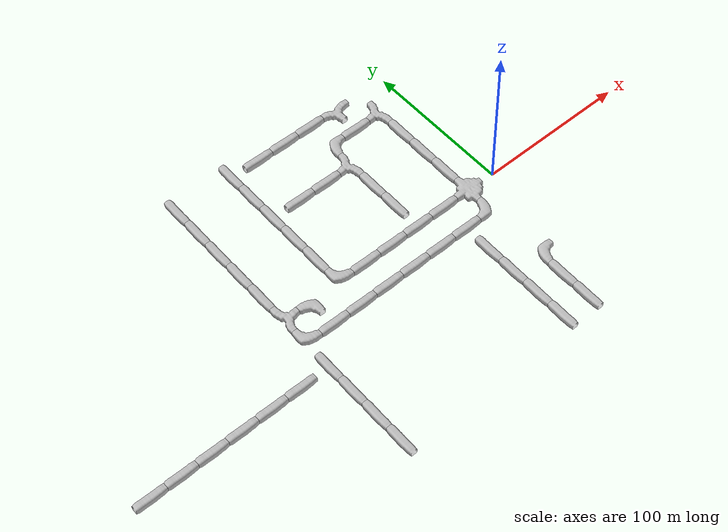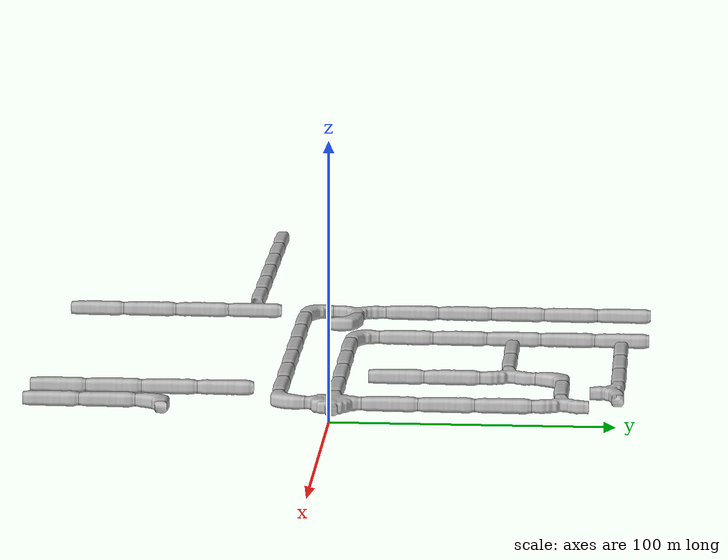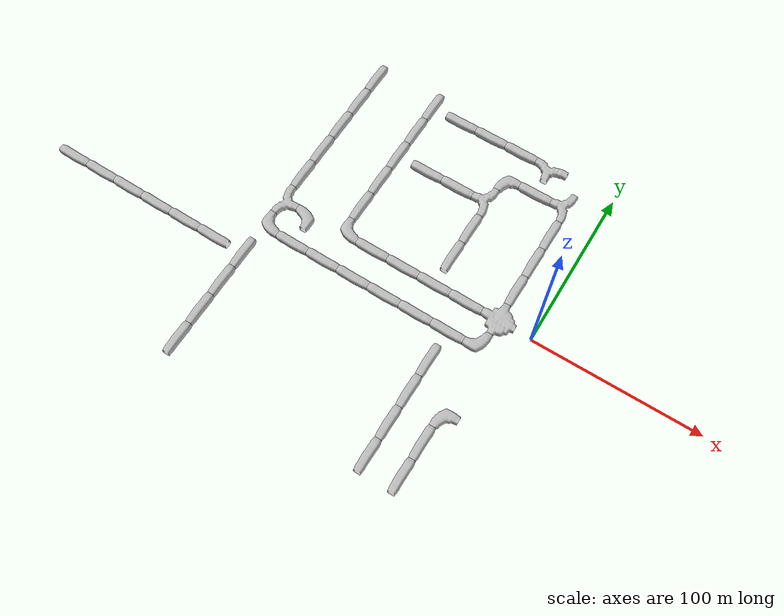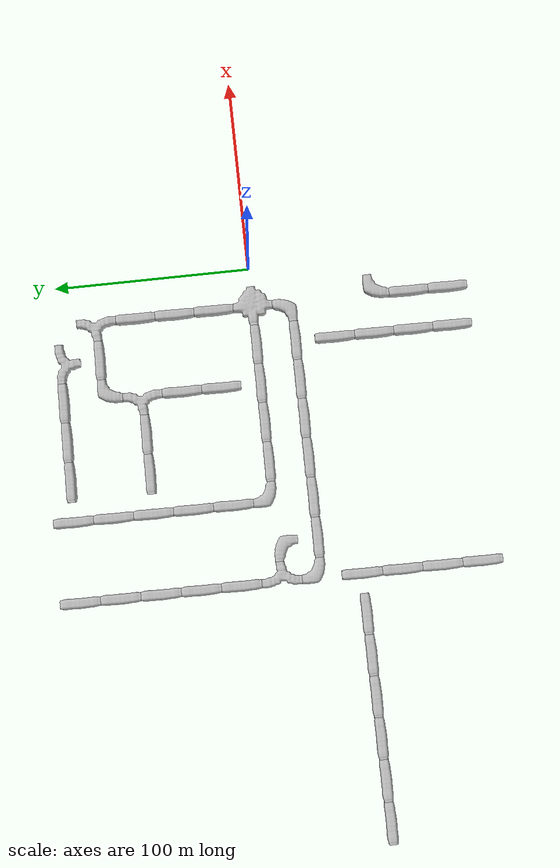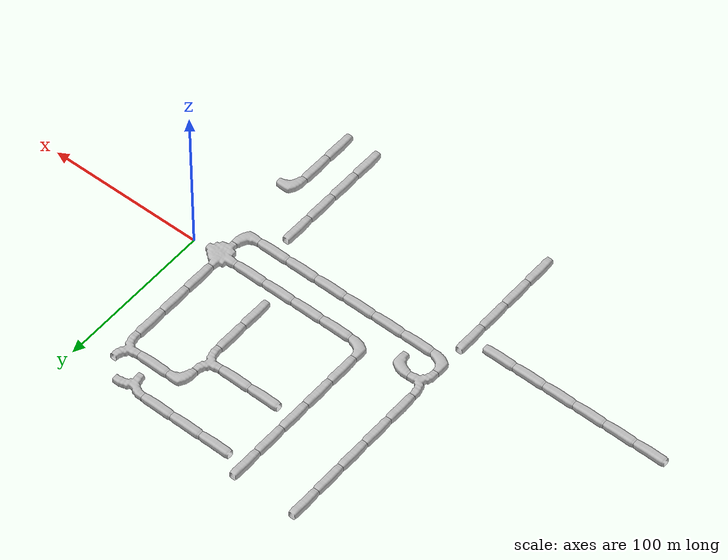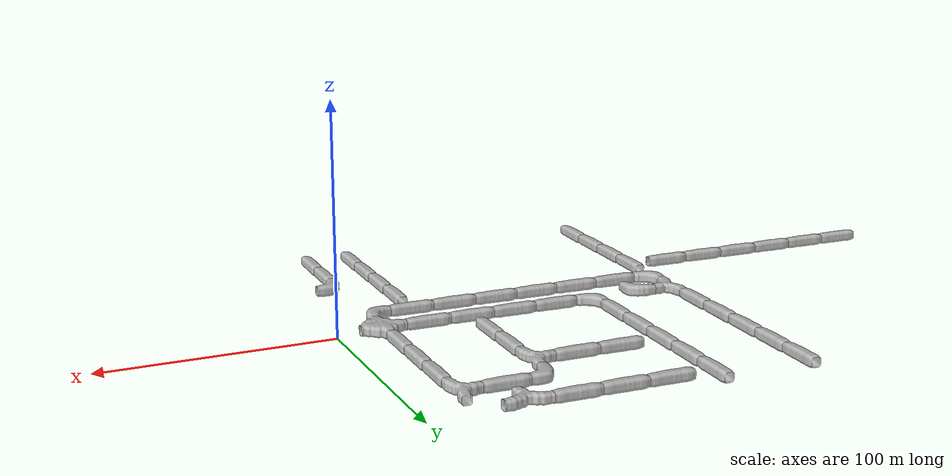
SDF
<sdf version="1.6">
 <world name="cave_32000_4">
  <include>
   <static>true</static>
   <name>cave_-1_-3</name>
   <pose>-20 -60 0 0 0 -1.5707963267948966</pose>
   <uri>model://cave_L_20m</uri>
  </include>
  <include>
   <static>true</static>
   <name>cave_-1_-4</name>
   <pose>-20 -80 0 0 0 0.0</pose>
   <uri>model://cave_straight_20m</uri>
  </include>
  <include>
   <static>true</static>
   <name>cave_-1_-5</name>
   <pose>-20 -100 0 0 0 0.0</pose>
   <uri>model://cave_straight_20m</uri>
  </include>
  <include>
   <static>true</static>
   <name>cave_-14_-2</name>
   <pose>-280 -40 0 0 0 1.5707963267948966</pose>
   <uri>model://cave_straight_20m</uri>
  </include>
  <include>
   <static>true</static>
   <name>cave_-13_-2</name>
   <pose>-260 -40 0 0 0 1.5707963267948966</pose>
   <uri>model://cave_straight_20m</uri>
  </include>
  <include>
   <static>true</static>
   <name>cave_-12_-2</name>
   <pose>-240 -40 0 0 0 1.5707963267948966</pose>
   <uri>model://cave_straight_20m</uri>
  </include>
  <include>
   <static>true</static>
   <name>cave_-11_-2</name>
   <pose>-220 -40 0 0 0 1.5707963267948966</pose>
   <uri>model://cave_straight_20m</uri>
  </include>
  <include>
   <static>true</static>
   <name>cave_-10_-2</name>
   <pose>-200 -40 0 0 0 1.5707963267948966</pose>
   <uri>model://cave_straight_20m</uri>
  </include>
  <include>
   <static>true</static>
   <name>cave_-9_-2</name>
   <pose>-180 -40 0 0 0 1.5707963267948966</pose>
   <uri>model://cave_straight_20m</uri>
  </include>
  <include>
   <static>true</static>
   <name>cave_-8_-5</name>
   <pose>-160 -100 0 0 0 0.0</pose>
   <uri>model://cave_straight_20m</uri>
  </include>
  <include>
   <static>true</static>
   <name>cave_-8_-4</name>
   <pose>-160 -80 0 0 0 0.0</pose>
   <uri>model://cave_straight_20m</uri>
  </include>
  <include>
   <static>true</static>
   <name>cave_-8_-3</name>
   <pose>-160 -60 0 0 0 0.0</pose>
   <uri>model://cave_straight_20m</uri>
  </include>
  <include>
   <static>true</static>
   <name>cave_-8_-2</name>
   <pose>-160 -40 0 0 0 0.0</pose>
   <uri>model://cave_straight_20m</uri>
  </include>
  <include>
   <static>true</static>
   <name>cave_-2_-5</name>
   <pose>-40 -100 0 0 0 0.0</pose>
   <uri>model://cave_straight_20m</uri>
  </include>
  <include>
   <static>true</static>
   <name>cave_-2_-4</name>
   <pose>-40 -80 0 0 0 0.0</pose>
   <uri>model://cave_straight_20m</uri>
  </include>
  <include>
   <static>true</static>
   <name>cave_-2_-3</name>
   <pose>-40 -60 0 0 0 0.0</pose>
   <uri>model://cave_straight_20m</uri>
  </include>
  <include>
   <static>true</static>
   <name>cave_-2_-2</name>
   <pose>-40 -40 0 0 0 0.0</pose>
   <uri>model://cave_straight_20m</uri>
  </include>
  <include>
   <static>true</static>
   <name>cave_-1_0</name>
   <pose>-20 0 0 0 0 -1.5707963267948966</pose>
   <uri>model://cave_4way_20m</uri>
  </include>
  <include>
   <static>true</static>
   <name>cave_-1_-1</name>
   <pose>-20 -20 0 0 0 1.5707963267948966</pose>
   <uri>model://cave_L_20m</uri>
  </include>
  <include>
   <static>true</static>
   <name>cave_-2_-1</name>
   <pose>-40 -20 0 0 0 1.5707963267948966</pose>
   <uri>model://cave_straight_20m</uri>
  </include>
  <include>
   <static>true</static>
   <name>cave_-3_-1</name>
   <pose>-60 -20 0 0 0 1.5707963267948966</pose>
   <uri>model://cave_straight_20m</uri>
  </include>
  <include>
   <static>true</static>
   <name>cave_-4_-1</name>
   <pose>-80 -20 0 0 0 1.5707963267948966</pose>
   <uri>model://cave_straight_20m</uri>
  </include>
  <include>
   <static>true</static>
   <name>cave_-5_-1</name>
   <pose>-100 -20 0 0 0 1.5707963267948966</pose>
   <uri>model://cave_straight_20m</uri>
  </include>
  <include>
   <static>true</static>
   <name>cave_-6_-1</name>
   <pose>-120 -20 0 0 0 1.5707963267948966</pose>
   <uri>model://cave_straight_20m</uri>
  </include>
  <include>
   <static>true</static>
   <name>cave_-7_-1</name>
   <pose>-140 -20 0 0 0 1.5707963267948966</pose>
   <uri>model://cave_straight_20m</uri>
  </include>
  <include>
   <static>true</static>
   <name>cave_-8_-1</name>
   <pose>-160 -20 0 0 0 0.0</pose>
   <uri>model://cave_L_20m</uri>
  </include>
  <include>
   <static>true</static>
   <name>cave_-8_0</name>
   <pose>-160 0 0 0 0 -1.5707963267948966</pose>
   <uri>model://cave_3way_20m</uri>
  </include>
  <include>
   <static>true</static>
   <name>cave_-7_0</name>
   <pose>-140 0 0 0 0 3.141592653589793</pose>
   <uri>model://cave_L_20m</uri>
  </include>
  <include>
   <static>true</static>
   <name>cave_-8_1</name>
   <pose>-160 20 0 0 0 0.0</pose>
   <uri>model://cave_straight_20m</uri>
  </include>
  <include>
   <static>true</static>
   <name>cave_-8_2</name>
   <pose>-160 40 0 0 0 0.0</pose>
   <uri>model://cave_straight_20m</uri>
  </include>
  <include>
   <static>true</static>
   <name>cave_-8_3</name>
   <pose>-160 60 0 0 0 0.0</pose>
   <uri>model://cave_straight_20m</uri>
  </include>
  <include>
   <static>true</static>
   <name>cave_-8_4</name>
   <pose>-160 80 0 0 0 0.0</pose>
   <uri>model://cave_straight_20m</uri>
  </include>
  <include>
   <static>true</static>
   <name>cave_-8_5</name>
   <pose>-160 100 0 0 0 0.0</pose>
   <uri>model://cave_straight_20m</uri>
  </include>
  <include>
   <static>true</static>
   <name>cave_-2_0</name>
   <pose>-40 0 0 0 0 1.5707963267948966</pose>
   <uri>model://cave_straight_20m</uri>
  </include>
  <include>
   <static>true</static>
   <name>cave_-3_0</name>
   <pose>-60 0 0 0 0 1.5707963267948966</pose>
   <uri>model://cave_straight_20m</uri>
  </include>
  <include>
   <static>true</static>
   <name>cave_-4_0</name>
   <pose>-80 0 0 0 0 1.5707963267948966</pose>
   <uri>model://cave_straight_20m</uri>
  </include>
  <include>
   <static>true</static>
   <name>cave_-5_0</name>
   <pose>-100 0 0 0 0 1.5707963267948966</pose>
   <uri>model://cave_straight_20m</uri>
  </include>
  <include>
   <static>true</static>
   <name>cave_-6_0</name>
   <pose>-120 0 0 0 0 0.0</pose>
   <uri>model://cave_L_20m</uri>
  </include>
  <include>
   <static>true</static>
   <name>cave_-6_1</name>
   <pose>-120 20 0 0 0 0.0</pose>
   <uri>model://cave_straight_20m</uri>
  </include>
  <include>
   <static>true</static>
   <name>cave_-6_2</name>
   <pose>-120 40 0 0 0 0.0</pose>
   <uri>model://cave_straight_20m</uri>
  </include>
  <include>
   <static>true</static>
   <name>cave_-6_3</name>
   <pose>-120 60 0 0 0 0.0</pose>
   <uri>model://cave_straight_20m</uri>
  </include>
  <include>
   <static>true</static>
   <name>cave_-6_4</name>
   <pose>-120 80 0 0 0 0.0</pose>
   <uri>model://cave_straight_20m</uri>
  </include>
  <include>
   <static>true</static>
   <name>cave_-6_5</name>
   <pose>-120 100 0 0 0 0.0</pose>
   <uri>model://cave_straight_20m</uri>
  </include>
  <include>
   <static>true</static>
   <name>cave_-1_1</name>
   <pose>-20 20 0 0 0 0.0</pose>
   <uri>model://cave_straight_20m</uri>
  </include>
  <include>
   <static>true</static>
   <name>cave_-1_2</name>
   <pose>-20 40 0 0 0 0.0</pose>
   <uri>model://cave_straight_20m</uri>
  </include>
  <include>
   <static>true</static>
   <name>cave_-1_3</name>
   <pose>-20 60 0 0 0 0.0</pose>
   <uri>model://cave_straight_20m</uri>
  </include>
  <include>
   <static>true</static>
   <name>cave_-1_4</name>
   <pose>-20 80 0 0 0 1.5707963267948966</pose>
   <uri>model://cave_3way_20m</uri>
  </include>
  <include>
   <static>true</static>
   <name>cave_-2_4</name>
   <pose>-40 80 0 0 0 1.5707963267948966</pose>
   <uri>model://cave_straight_20m</uri>
  </include>
  <include>
   <static>true</static>
   <name>cave_-3_4</name>
   <pose>-60 80 0 0 0 -1.5707963267948966</pose>
   <uri>model://cave_L_20m</uri>
  </include>
  <include>
   <static>true</static>
   <name>cave_-3_3</name>
   <pose>-60 60 0 0 0 1.5707963267948966</pose>
   <uri>model://cave_3way_20m</uri>
  </include>
  <include>
   <static>true</static>
   <name>cave_-3_2</name>
   <pose>-60 40 0 0 0 0.0</pose>
   <uri>model://cave_straight_20m</uri>
  </include>
  <include>
   <static>true</static>
   <name>cave_-3_1</name>
   <pose>-60 20 0 0 0 0.0</pose>
   <uri>model://cave_straight_20m</uri>
  </include>
  <include>
   <static>true</static>
   <name>cave_-4_3</name>
   <pose>-80 60 0 0 0 1.5707963267948966</pose>
   <uri>model://cave_straight_20m</uri>
  </include>
  <include>
   <static>true</static>
   <name>cave_-5_3</name>
   <pose>-100 60 0 0 0 1.5707963267948966</pose>
   <uri>model://cave_straight_20m</uri>
  </include>
  <include>
   <static>true</static>
   <name>cave_-2_5</name>
   <pose>-40 100 0 0 0 3.141592653589793</pose>
   <uri>model://cave_3way_20m</uri>
  </include>
  <include>
   <static>true</static>
   <name>cave_-3_5</name>
   <pose>-60 100 0 0 0 1.5707963267948966</pose>
   <uri>model://cave_straight_20m</uri>
  </include>
  <include>
   <static>true</static>
   <name>cave_-4_5</name>
   <pose>-80 100 0 0 0 1.5707963267948966</pose>
   <uri>model://cave_straight_20m</uri>
  </include>
  <include>
   <static>true</static>
   <name>cave_-5_5</name>
   <pose>-100 100 0 0 0 1.5707963267948966</pose>
   <uri>model://cave_straight_20m</uri>
  </include>
 </world>
</sdf>
